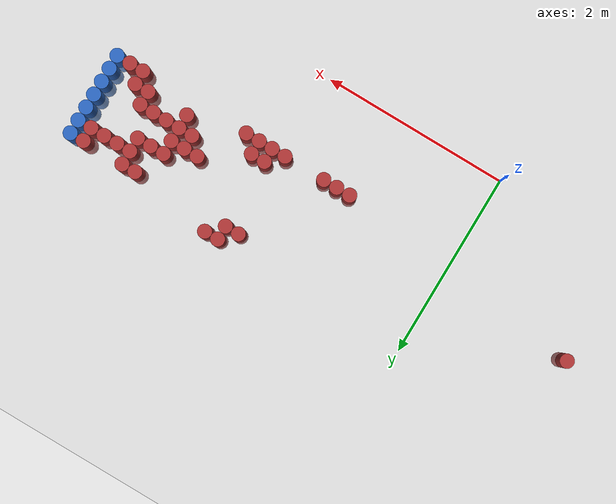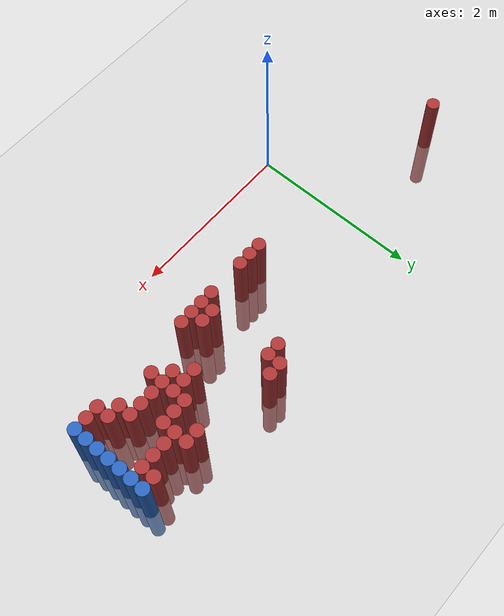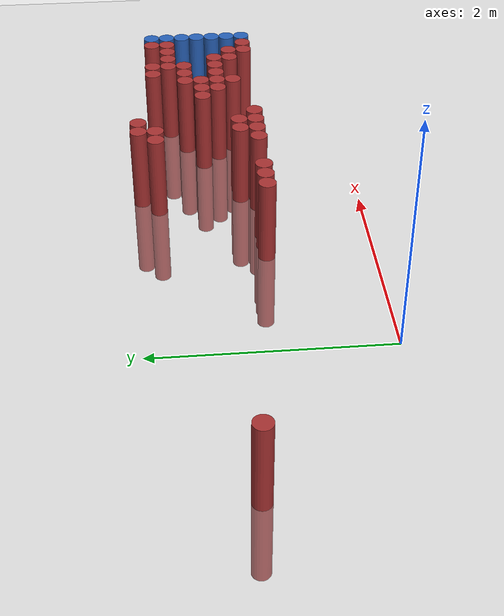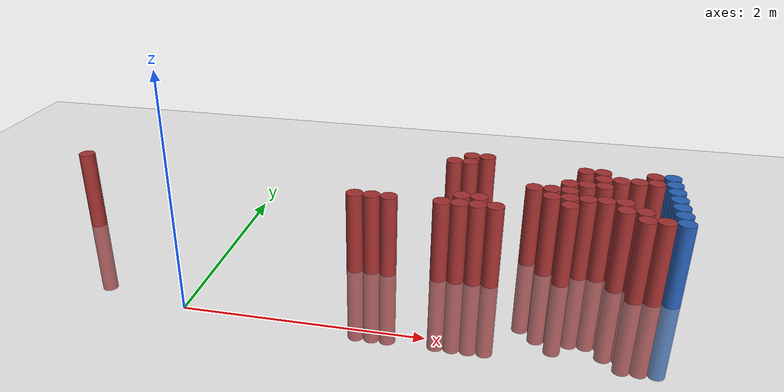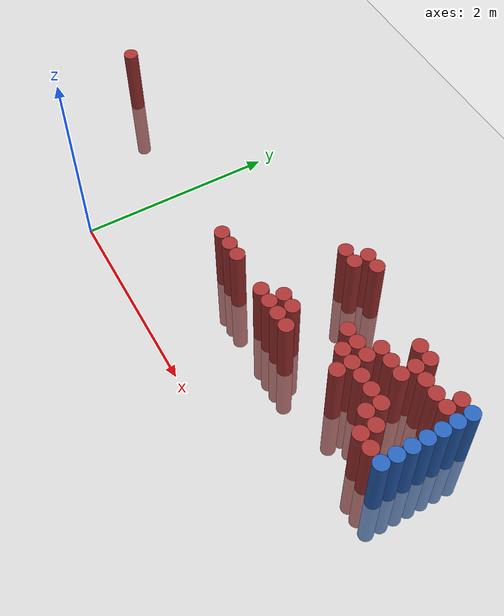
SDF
<sdf version="1.6">
 <world name="default">
  <model name="ground_plane">
   <static>1</static>
   <link name="link">
    <collision name="collision">
     <geometry><plane><normal>0 0 1</normal><size>100 100</size></plane></geometry>
     <surface><friction><ode><mu>100</mu><mu2>50</mu2></ode></friction></surface>
    </collision>
    <visual name="visual">
     <cast_shadows>0</cast_shadows>
     <geometry><plane><normal>0 0 1</normal><size>100 100</size></plane></geometry>
     <material>
      <script><uri>file://media/materials/scripts/gazebo.material</uri><name>Gazebo/Grey</name></script>
     </material>
    </visual>
   </link>
  </model>
  <model name="unit_cylinder_128">
   <static>1</static>
   <pose>3.925000 1.075000 0.000000 0.000000 0.000000 0.000000</pose>
   <link name="link">
    <inertial>
     <mass>1</mass>
     <inertia><ixx>0.145833</ixx><ixy>0</ixy><ixz>0</ixz><iyy>0.145833</iyy><iyz>0</iyz><izz>0.125</izz></inertia>
    </inertial>
    <collision name="collision">
     <geometry><cylinder><radius>0.075000</radius><length>1.5</length></cylinder></geometry>
    </collision>
    <visual name="visual">
     <geometry><cylinder><radius>0.075000</radius><length>1.5</length></cylinder></geometry>
     <material>
      <ambient>0.152000 0.379000 0.720000 1</ambient>
      <diffuse>0.152000 0.379000 0.720000 1</diffuse>
     </material>
     <material>
      <script><name>Gazebo/Grey</name><uri>file://media/materials/scripts/gazebo.material</uri></script>
     </material>
    </visual>
   </link>
  </model>
  <model name="unit_cylinder_130">
   <static>1</static>
   <pose>3.925000 1.225000 0.000000 0.000000 0.000000 0.000000</pose>
   <link name="link">
    <inertial>
     <mass>1</mass>
     <inertia><ixx>0.145833</ixx><ixy>0</ixy><ixz>0</ixz><iyy>0.145833</iyy><iyz>0</iyz><izz>0.125</izz></inertia>
    </inertial>
    <collision name="collision">
     <geometry><cylinder><radius>0.075000</radius><length>1.5</length></cylinder></geometry>
    </collision>
    <visual name="visual">
     <geometry><cylinder><radius>0.075000</radius><length>1.5</length></cylinder></geometry>
     <material>
      <ambient>0.152000 0.379000 0.720000 1</ambient>
      <diffuse>0.152000 0.379000 0.720000 1</diffuse>
     </material>
     <material>
      <script><name>Gazebo/Grey</name><uri>file://media/materials/scripts/gazebo.material</uri></script>
     </material>
    </visual>
   </link>
  </model>
  <model name="unit_cylinder_132">
   <static>1</static>
   <pose>3.925000 1.375000 0.000000 0.000000 0.000000 0.000000</pose>
   <link name="link">
    <inertial>
     <mass>1</mass>
     <inertia><ixx>0.145833</ixx><ixy>0</ixy><ixz>0</ixz><iyy>0.145833</iyy><iyz>0</iyz><izz>0.125</izz></inertia>
    </inertial>
    <collision name="collision">
     <geometry><cylinder><radius>0.075000</radius><length>1.5</length></cylinder></geometry>
    </collision>
    <visual name="visual">
     <geometry><cylinder><radius>0.075000</radius><length>1.5</length></cylinder></geometry>
     <material>
      <ambient>0.152000 0.379000 0.720000 1</ambient>
      <diffuse>0.152000 0.379000 0.720000 1</diffuse>
     </material>
     <material>
      <script><name>Gazebo/Grey</name><uri>file://media/materials/scripts/gazebo.material</uri></script>
     </material>
    </visual>
   </link>
  </model>
  <model name="unit_cylinder_134">
   <static>1</static>
   <pose>3.925000 1.525000 0.000000 0.000000 0.000000 0.000000</pose>
   <link name="link">
    <inertial>
     <mass>1</mass>
     <inertia><ixx>0.145833</ixx><ixy>0</ixy><ixz>0</ixz><iyy>0.145833</iyy><iyz>0</iyz><izz>0.125</izz></inertia>
    </inertial>
    <collision name="collision">
     <geometry><cylinder><radius>0.075000</radius><length>1.5</length></cylinder></geometry>
    </collision>
    <visual name="visual">
     <geometry><cylinder><radius>0.075000</radius><length>1.5</length></cylinder></geometry>
     <material>
      <ambient>0.152000 0.379000 0.720000 1</ambient>
      <diffuse>0.152000 0.379000 0.720000 1</diffuse>
     </material>
     <material>
      <script><name>Gazebo/Grey</name><uri>file://media/materials/scripts/gazebo.material</uri></script>
     </material>
    </visual>
   </link>
  </model>
  <model name="unit_cylinder_136">
   <static>1</static>
   <pose>3.925000 1.675000 0.000000 0.000000 0.000000 0.000000</pose>
   <link name="link">
    <inertial>
     <mass>1</mass>
     <inertia><ixx>0.145833</ixx><ixy>0</ixy><ixz>0</ixz><iyy>0.145833</iyy><iyz>0</iyz><izz>0.125</izz></inertia>
    </inertial>
    <collision name="collision">
     <geometry><cylinder><radius>0.075000</radius><length>1.5</length></cylinder></geometry>
    </collision>
    <visual name="visual">
     <geometry><cylinder><radius>0.075000</radius><length>1.5</length></cylinder></geometry>
     <material>
      <ambient>0.152000 0.379000 0.720000 1</ambient>
      <diffuse>0.152000 0.379000 0.720000 1</diffuse>
     </material>
     <material>
      <script><name>Gazebo/Grey</name><uri>file://media/materials/scripts/gazebo.material</uri></script>
     </material>
    </visual>
   </link>
  </model>
  <model name="unit_cylinder_138">
   <static>1</static>
   <pose>3.925000 1.825000 0.000000 0.000000 0.000000 0.000000</pose>
   <link name="link">
    <inertial>
     <mass>1</mass>
     <inertia><ixx>0.145833</ixx><ixy>0</ixy><ixz>0</ixz><iyy>0.145833</iyy><iyz>0</iyz><izz>0.125</izz></inertia>
    </inertial>
    <collision name="collision">
     <geometry><cylinder><radius>0.075000</radius><length>1.5</length></cylinder></geometry>
    </collision>
    <visual name="visual">
     <geometry><cylinder><radius>0.075000</radius><length>1.5</length></cylinder></geometry>
     <material>
      <ambient>0.152000 0.379000 0.720000 1</ambient>
      <diffuse>0.152000 0.379000 0.720000 1</diffuse>
     </material>
     <material>
      <script><name>Gazebo/Grey</name><uri>file://media/materials/scripts/gazebo.material</uri></script>
     </material>
    </visual>
   </link>
  </model>
  <model name="unit_cylinder_314">
   <static>1</static>
   <pose>-1.475000 1.225000 0.000000 0.000000 0.000000 0.000000</pose>
   <link name="link">
    <inertial>
     <mass>1</mass>
     <inertia><ixx>0.145833</ixx><ixy>0</ixy><ixz>0</ixz><iyy>0.145833</iyy><iyz>0</iyz><izz>0.125</izz></inertia>
    </inertial>
    <collision name="collision">
     <geometry><cylinder><radius>0.075000</radius><length>1.5</length></cylinder></geometry>
    </collision>
    <visual name="visual">
     <geometry><cylinder><radius>0.075000</radius><length>1.5</length></cylinder></geometry>
     <material>
      <ambient>0.648000 0.192000 0.192000 1</ambient>
      <diffuse>0.648000 0.192000 0.192000 1</diffuse>
     </material>
     <material>
      <script><name>Gazebo/Grey</name><uri>file://media/materials/scripts/gazebo.material</uri></script>
     </material>
    </visual>
   </link>
  </model>
  <model name="unit_cylinder_352">
   <static>1</static>
   <pose>1.225000 0.925000 0.000000 0.000000 0.000000 0.000000</pose>
   <link name="link">
    <inertial>
     <mass>1</mass>
     <inertia><ixx>0.145833</ixx><ixy>0</ixy><ixz>0</ixz><iyy>0.145833</iyy><iyz>0</iyz><izz>0.125</izz></inertia>
    </inertial>
    <collision name="collision">
     <geometry><cylinder><radius>0.075000</radius><length>1.5</length></cylinder></geometry>
    </collision>
    <visual name="visual">
     <geometry><cylinder><radius>0.075000</radius><length>1.5</length></cylinder></geometry>
     <material>
      <ambient>0.648000 0.192000 0.192000 1</ambient>
      <diffuse>0.648000 0.192000 0.192000 1</diffuse>
     </material>
     <material>
      <script><name>Gazebo/Grey</name><uri>file://media/materials/scripts/gazebo.material</uri></script>
     </material>
    </visual>
   </link>
  </model>
  <model name="unit_cylinder_358">
   <static>1</static>
   <pose>1.375000 0.925000 0.000000 0.000000 0.000000 0.000000</pose>
   <link name="link">
    <inertial>
     <mass>1</mass>
     <inertia><ixx>0.145833</ixx><ixy>0</ixy><ixz>0</ixz><iyy>0.145833</iyy><iyz>0</iyz><izz>0.125</izz></inertia>
    </inertial>
    <collision name="collision">
     <geometry><cylinder><radius>0.075000</radius><length>1.5</length></cylinder></geometry>
    </collision>
    <visual name="visual">
     <geometry><cylinder><radius>0.075000</radius><length>1.5</length></cylinder></geometry>
     <material>
      <ambient>0.648000 0.192000 0.192000 1</ambient>
      <diffuse>0.648000 0.192000 0.192000 1</diffuse>
     </material>
     <material>
      <script><name>Gazebo/Grey</name><uri>file://media/materials/scripts/gazebo.material</uri></script>
     </material>
    </visual>
   </link>
  </model>
  <model name="unit_cylinder_365">
   <static>1</static>
   <pose>1.525000 0.925000 0.000000 0.000000 0.000000 0.000000</pose>
   <link name="link">
    <inertial>
     <mass>1</mass>
     <inertia><ixx>0.145833</ixx><ixy>0</ixy><ixz>0</ixz><iyy>0.145833</iyy><iyz>0</iyz><izz>0.125</izz></inertia>
    </inertial>
    <collision name="collision">
     <geometry><cylinder><radius>0.075000</radius><length>1.5</length></cylinder></geometry>
    </collision>
    <visual name="visual">
     <geometry><cylinder><radius>0.075000</radius><length>1.5</length></cylinder></geometry>
     <material>
      <ambient>0.648000 0.192000 0.192000 1</ambient>
      <diffuse>0.648000 0.192000 0.192000 1</diffuse>
     </material>
     <material>
      <script><name>Gazebo/Grey</name><uri>file://media/materials/scripts/gazebo.material</uri></script>
     </material>
    </visual>
   </link>
  </model>
  <model name="unit_cylinder_385">
   <static>1</static>
   <pose>1.975000 0.925000 0.000000 0.000000 0.000000 0.000000</pose>
   <link name="link">
    <inertial>
     <mass>1</mass>
     <inertia><ixx>0.145833</ixx><ixy>0</ixy><ixz>0</ixz><iyy>0.145833</iyy><iyz>0</iyz><izz>0.125</izz></inertia>
    </inertial>
    <collision name="collision">
     <geometry><cylinder><radius>0.075000</radius><length>1.5</length></cylinder></geometry>
    </collision>
    <visual name="visual">
     <geometry><cylinder><radius>0.075000</radius><length>1.5</length></cylinder></geometry>
     <material>
      <ambient>0.648000 0.192000 0.192000 1</ambient>
      <diffuse>0.648000 0.192000 0.192000 1</diffuse>
     </material>
     <material>
      <script><name>Gazebo/Grey</name><uri>file://media/materials/scripts/gazebo.material</uri></script>
     </material>
    </visual>
   </link>
  </model>
  <model name="unit_cylinder_386">
   <static>1</static>
   <pose>1.975000 1.825000 0.000000 0.000000 0.000000 0.000000</pose>
   <link name="link">
    <inertial>
     <mass>1</mass>
     <inertia><ixx>0.145833</ixx><ixy>0</ixy><ixz>0</ixz><iyy>0.145833</iyy><iyz>0</iyz><izz>0.125</izz></inertia>
    </inertial>
    <collision name="collision">
     <geometry><cylinder><radius>0.075000</radius><length>1.5</length></cylinder></geometry>
    </collision>
    <visual name="visual">
     <geometry><cylinder><radius>0.075000</radius><length>1.5</length></cylinder></geometry>
     <material>
      <ambient>0.648000 0.192000 0.192000 1</ambient>
      <diffuse>0.648000 0.192000 0.192000 1</diffuse>
     </material>
     <material>
      <script><name>Gazebo/Grey</name><uri>file://media/materials/scripts/gazebo.material</uri></script>
     </material>
    </visual>
   </link>
  </model>
  <model name="unit_cylinder_393">
   <static>1</static>
   <pose>2.125000 0.925000 0.000000 0.000000 0.000000 0.000000</pose>
   <link name="link">
    <inertial>
     <mass>1</mass>
     <inertia><ixx>0.145833</ixx><ixy>0</ixy><ixz>0</ixz><iyy>0.145833</iyy><iyz>0</iyz><izz>0.125</izz></inertia>
    </inertial>
    <collision name="collision">
     <geometry><cylinder><radius>0.075000</radius><length>1.5</length></cylinder></geometry>
    </collision>
    <visual name="visual">
     <geometry><cylinder><radius>0.075000</radius><length>1.5</length></cylinder></geometry>
     <material>
      <ambient>0.648000 0.192000 0.192000 1</ambient>
      <diffuse>0.648000 0.192000 0.192000 1</diffuse>
     </material>
     <material>
      <script><name>Gazebo/Grey</name><uri>file://media/materials/scripts/gazebo.material</uri></script>
     </material>
    </visual>
   </link>
  </model>
  <model name="unit_cylinder_394">
   <static>1</static>
   <pose>2.125000 1.075000 0.000000 0.000000 0.000000 0.000000</pose>
   <link name="link">
    <inertial>
     <mass>1</mass>
     <inertia><ixx>0.145833</ixx><ixy>0</ixy><ixz>0</ixz><iyy>0.145833</iyy><iyz>0</iyz><izz>0.125</izz></inertia>
    </inertial>
    <collision name="collision">
     <geometry><cylinder><radius>0.075000</radius><length>1.5</length></cylinder></geometry>
    </collision>
    <visual name="visual">
     <geometry><cylinder><radius>0.075000</radius><length>1.5</length></cylinder></geometry>
     <material>
      <ambient>0.648000 0.192000 0.192000 1</ambient>
      <diffuse>0.648000 0.192000 0.192000 1</diffuse>
     </material>
     <material>
      <script><name>Gazebo/Grey</name><uri>file://media/materials/scripts/gazebo.material</uri></script>
     </material>
    </visual>
   </link>
  </model>
  <model name="unit_cylinder_395">
   <static>1</static>
   <pose>2.125000 1.825000 0.000000 0.000000 0.000000 0.000000</pose>
   <link name="link">
    <inertial>
     <mass>1</mass>
     <inertia><ixx>0.145833</ixx><ixy>0</ixy><ixz>0</ixz><iyy>0.145833</iyy><iyz>0</iyz><izz>0.125</izz></inertia>
    </inertial>
    <collision name="collision">
     <geometry><cylinder><radius>0.075000</radius><length>1.5</length></cylinder></geometry>
    </collision>
    <visual name="visual">
     <geometry><cylinder><radius>0.075000</radius><length>1.5</length></cylinder></geometry>
     <material>
      <ambient>0.648000 0.192000 0.192000 1</ambient>
      <diffuse>0.648000 0.192000 0.192000 1</diffuse>
     </material>
     <material>
      <script><name>Gazebo/Grey</name><uri>file://media/materials/scripts/gazebo.material</uri></script>
     </material>
    </visual>
   </link>
  </model>
  <model name="unit_cylinder_396">
   <static>1</static>
   <pose>2.125000 1.975000 0.000000 0.000000 0.000000 0.000000</pose>
   <link name="link">
    <inertial>
     <mass>1</mass>
     <inertia><ixx>0.145833</ixx><ixy>0</ixy><ixz>0</ixz><iyy>0.145833</iyy><iyz>0</iyz><izz>0.125</izz></inertia>
    </inertial>
    <collision name="collision">
     <geometry><cylinder><radius>0.075000</radius><length>1.5</length></cylinder></geometry>
    </collision>
    <visual name="visual">
     <geometry><cylinder><radius>0.075000</radius><length>1.5</length></cylinder></geometry>
     <material>
      <ambient>0.648000 0.192000 0.192000 1</ambient>
      <diffuse>0.648000 0.192000 0.192000 1</diffuse>
     </material>
     <material>
      <script><name>Gazebo/Grey</name><uri>file://media/materials/scripts/gazebo.material</uri></script>
     </material>
    </visual>
   </link>
  </model>
  <model name="unit_cylinder_402">
   <static>1</static>
   <pose>2.275000 0.925000 0.000000 0.000000 0.000000 0.000000</pose>
   <link name="link">
    <inertial>
     <mass>1</mass>
     <inertia><ixx>0.145833</ixx><ixy>0</ixy><ixz>0</ixz><iyy>0.145833</iyy><iyz>0</iyz><izz>0.125</izz></inertia>
    </inertial>
    <collision name="collision">
     <geometry><cylinder><radius>0.075000</radius><length>1.5</length></cylinder></geometry>
    </collision>
    <visual name="visual">
     <geometry><cylinder><radius>0.075000</radius><length>1.5</length></cylinder></geometry>
     <material>
      <ambient>0.648000 0.192000 0.192000 1</ambient>
      <diffuse>0.648000 0.192000 0.192000 1</diffuse>
     </material>
     <material>
      <script><name>Gazebo/Grey</name><uri>file://media/materials/scripts/gazebo.material</uri></script>
     </material>
    </visual>
   </link>
  </model>
  <model name="unit_cylinder_403">
   <static>1</static>
   <pose>2.275000 1.075000 0.000000 0.000000 0.000000 0.000000</pose>
   <link name="link">
    <inertial>
     <mass>1</mass>
     <inertia><ixx>0.145833</ixx><ixy>0</ixy><ixz>0</ixz><iyy>0.145833</iyy><iyz>0</iyz><izz>0.125</izz></inertia>
    </inertial>
    <collision name="collision">
     <geometry><cylinder><radius>0.075000</radius><length>1.5</length></cylinder></geometry>
    </collision>
    <visual name="visual">
     <geometry><cylinder><radius>0.075000</radius><length>1.5</length></cylinder></geometry>
     <material>
      <ambient>0.648000 0.192000 0.192000 1</ambient>
      <diffuse>0.648000 0.192000 0.192000 1</diffuse>
     </material>
     <material>
      <script><name>Gazebo/Grey</name><uri>file://media/materials/scripts/gazebo.material</uri></script>
     </material>
    </visual>
   </link>
  </model>
  <model name="unit_cylinder_404">
   <static>1</static>
   <pose>2.275000 1.975000 0.000000 0.000000 0.000000 0.000000</pose>
   <link name="link">
    <inertial>
     <mass>1</mass>
     <inertia><ixx>0.145833</ixx><ixy>0</ixy><ixz>0</ixz><iyy>0.145833</iyy><iyz>0</iyz><izz>0.125</izz></inertia>
    </inertial>
    <collision name="collision">
     <geometry><cylinder><radius>0.075000</radius><length>1.5</length></cylinder></geometry>
    </collision>
    <visual name="visual">
     <geometry><cylinder><radius>0.075000</radius><length>1.5</length></cylinder></geometry>
     <material>
      <ambient>0.648000 0.192000 0.192000 1</ambient>
      <diffuse>0.648000 0.192000 0.192000 1</diffuse>
     </material>
     <material>
      <script><name>Gazebo/Grey</name><uri>file://media/materials/scripts/gazebo.material</uri></script>
     </material>
    </visual>
   </link>
  </model>
  <model name="unit_cylinder_406">
   <static>1</static>
   <pose>2.425000 0.925000 0.000000 0.000000 0.000000 0.000000</pose>
   <link name="link">
    <inertial>
     <mass>1</mass>
     <inertia><ixx>0.145833</ixx><ixy>0</ixy><ixz>0</ixz><iyy>0.145833</iyy><iyz>0</iyz><izz>0.125</izz></inertia>
    </inertial>
    <collision name="collision">
     <geometry><cylinder><radius>0.075000</radius><length>1.5</length></cylinder></geometry>
    </collision>
    <visual name="visual">
     <geometry><cylinder><radius>0.075000</radius><length>1.5</length></cylinder></geometry>
     <material>
      <ambient>0.648000 0.192000 0.192000 1</ambient>
      <diffuse>0.648000 0.192000 0.192000 1</diffuse>
     </material>
     <material>
      <script><name>Gazebo/Grey</name><uri>file://media/materials/scripts/gazebo.material</uri></script>
     </material>
    </visual>
   </link>
  </model>
  <model name="unit_cylinder_408">
   <static>1</static>
   <pose>2.725000 1.375000 0.000000 0.000000 0.000000 0.000000</pose>
   <link name="link">
    <inertial>
     <mass>1</mass>
     <inertia><ixx>0.145833</ixx><ixy>0</ixy><ixz>0</ixz><iyy>0.145833</iyy><iyz>0</iyz><izz>0.125</izz></inertia>
    </inertial>
    <collision name="collision">
     <geometry><cylinder><radius>0.075000</radius><length>1.5</length></cylinder></geometry>
    </collision>
    <visual name="visual">
     <geometry><cylinder><radius>0.075000</radius><length>1.5</length></cylinder></geometry>
     <material>
      <ambient>0.648000 0.192000 0.192000 1</ambient>
      <diffuse>0.648000 0.192000 0.192000 1</diffuse>
     </material>
     <material>
      <script><name>Gazebo/Grey</name><uri>file://media/materials/scripts/gazebo.material</uri></script>
     </material>
    </visual>
   </link>
  </model>
  <model name="unit_cylinder_409">
   <static>1</static>
   <pose>2.875000 1.225000 0.000000 0.000000 0.000000 0.000000</pose>
   <link name="link">
    <inertial>
     <mass>1</mass>
     <inertia><ixx>0.145833</ixx><ixy>0</ixy><ixz>0</ixz><iyy>0.145833</iyy><iyz>0</iyz><izz>0.125</izz></inertia>
    </inertial>
    <collision name="collision">
     <geometry><cylinder><radius>0.075000</radius><length>1.5</length></cylinder></geometry>
    </collision>
    <visual name="visual">
     <geometry><cylinder><radius>0.075000</radius><length>1.5</length></cylinder></geometry>
     <material>
      <ambient>0.648000 0.192000 0.192000 1</ambient>
      <diffuse>0.648000 0.192000 0.192000 1</diffuse>
     </material>
     <material>
      <script><name>Gazebo/Grey</name><uri>file://media/materials/scripts/gazebo.material</uri></script>
     </material>
    </visual>
   </link>
  </model>
  <model name="unit_cylinder_410">
   <static>1</static>
   <pose>2.875000 1.375000 0.000000 0.000000 0.000000 0.000000</pose>
   <link name="link">
    <inertial>
     <mass>1</mass>
     <inertia><ixx>0.145833</ixx><ixy>0</ixy><ixz>0</ixz><iyy>0.145833</iyy><iyz>0</iyz><izz>0.125</izz></inertia>
    </inertial>
    <collision name="collision">
     <geometry><cylinder><radius>0.075000</radius><length>1.5</length></cylinder></geometry>
    </collision>
    <visual name="visual">
     <geometry><cylinder><radius>0.075000</radius><length>1.5</length></cylinder></geometry>
     <material>
      <ambient>0.648000 0.192000 0.192000 1</ambient>
      <diffuse>0.648000 0.192000 0.192000 1</diffuse>
     </material>
     <material>
      <script><name>Gazebo/Grey</name><uri>file://media/materials/scripts/gazebo.material</uri></script>
     </material>
    </visual>
   </link>
  </model>
  <model name="unit_cylinder_414">
   <static>1</static>
   <pose>3.025000 1.075000 0.000000 0.000000 0.000000 0.000000</pose>
   <link name="link">
    <inertial>
     <mass>1</mass>
     <inertia><ixx>0.145833</ixx><ixy>0</ixy><ixz>0</ixz><iyy>0.145833</iyy><iyz>0</iyz><izz>0.125</izz></inertia>
    </inertial>
    <collision name="collision">
     <geometry><cylinder><radius>0.075000</radius><length>1.5</length></cylinder></geometry>
    </collision>
    <visual name="visual">
     <geometry><cylinder><radius>0.075000</radius><length>1.5</length></cylinder></geometry>
     <material>
      <ambient>0.648000 0.192000 0.192000 1</ambient>
      <diffuse>0.648000 0.192000 0.192000 1</diffuse>
     </material>
     <material>
      <script><name>Gazebo/Grey</name><uri>file://media/materials/scripts/gazebo.material</uri></script>
     </material>
    </visual>
   </link>
  </model>
  <model name="unit_cylinder_415">
   <static>1</static>
   <pose>3.025000 1.225000 0.000000 0.000000 0.000000 0.000000</pose>
   <link name="link">
    <inertial>
     <mass>1</mass>
     <inertia><ixx>0.145833</ixx><ixy>0</ixy><ixz>0</ixz><iyy>0.145833</iyy><iyz>0</iyz><izz>0.125</izz></inertia>
    </inertial>
    <collision name="collision">
     <geometry><cylinder><radius>0.075000</radius><length>1.5</length></cylinder></geometry>
    </collision>
    <visual name="visual">
     <geometry><cylinder><radius>0.075000</radius><length>1.5</length></cylinder></geometry>
     <material>
      <ambient>0.648000 0.192000 0.192000 1</ambient>
      <diffuse>0.648000 0.192000 0.192000 1</diffuse>
     </material>
     <material>
      <script><name>Gazebo/Grey</name><uri>file://media/materials/scripts/gazebo.material</uri></script>
     </material>
    </visual>
   </link>
  </model>
  <model name="unit_cylinder_416">
   <static>1</static>
   <pose>3.025000 1.375000 0.000000 0.000000 0.000000 0.000000</pose>
   <link name="link">
    <inertial>
     <mass>1</mass>
     <inertia><ixx>0.145833</ixx><ixy>0</ixy><ixz>0</ixz><iyy>0.145833</iyy><iyz>0</iyz><izz>0.125</izz></inertia>
    </inertial>
    <collision name="collision">
     <geometry><cylinder><radius>0.075000</radius><length>1.5</length></cylinder></geometry>
    </collision>
    <visual name="visual">
     <geometry><cylinder><radius>0.075000</radius><length>1.5</length></cylinder></geometry>
     <material>
      <ambient>0.648000 0.192000 0.192000 1</ambient>
      <diffuse>0.648000 0.192000 0.192000 1</diffuse>
     </material>
     <material>
      <script><name>Gazebo/Grey</name><uri>file://media/materials/scripts/gazebo.material</uri></script>
     </material>
    </visual>
   </link>
  </model>
  <model name="unit_cylinder_417">
   <static>1</static>
   <pose>3.025000 1.525000 0.000000 0.000000 0.000000 0.000000</pose>
   <link name="link">
    <inertial>
     <mass>1</mass>
     <inertia><ixx>0.145833</ixx><ixy>0</ixy><ixz>0</ixz><iyy>0.145833</iyy><iyz>0</iyz><izz>0.125</izz></inertia>
    </inertial>
    <collision name="collision">
     <geometry><cylinder><radius>0.075000</radius><length>1.5</length></cylinder></geometry>
    </collision>
    <visual name="visual">
     <geometry><cylinder><radius>0.075000</radius><length>1.5</length></cylinder></geometry>
     <material>
      <ambient>0.648000 0.192000 0.192000 1</ambient>
      <diffuse>0.648000 0.192000 0.192000 1</diffuse>
     </material>
     <material>
      <script><name>Gazebo/Grey</name><uri>file://media/materials/scripts/gazebo.material</uri></script>
     </material>
    </visual>
   </link>
  </model>
  <model name="unit_cylinder_419">
   <static>1</static>
   <pose>3.175000 1.225000 0.000000 0.000000 0.000000 0.000000</pose>
   <link name="link">
    <inertial>
     <mass>1</mass>
     <inertia><ixx>0.145833</ixx><ixy>0</ixy><ixz>0</ixz><iyy>0.145833</iyy><iyz>0</iyz><izz>0.125</izz></inertia>
    </inertial>
    <collision name="collision">
     <geometry><cylinder><radius>0.075000</radius><length>1.5</length></cylinder></geometry>
    </collision>
    <visual name="visual">
     <geometry><cylinder><radius>0.075000</radius><length>1.5</length></cylinder></geometry>
     <material>
      <ambient>0.648000 0.192000 0.192000 1</ambient>
      <diffuse>0.648000 0.192000 0.192000 1</diffuse>
     </material>
     <material>
      <script><name>Gazebo/Grey</name><uri>file://media/materials/scripts/gazebo.material</uri></script>
     </material>
    </visual>
   </link>
  </model>
  <model name="unit_cylinder_420">
   <static>1</static>
   <pose>3.175000 1.525000 0.000000 0.000000 0.000000 0.000000</pose>
   <link name="link">
    <inertial>
     <mass>1</mass>
     <inertia><ixx>0.145833</ixx><ixy>0</ixy><ixz>0</ixz><iyy>0.145833</iyy><iyz>0</iyz><izz>0.125</izz></inertia>
    </inertial>
    <collision name="collision">
     <geometry><cylinder><radius>0.075000</radius><length>1.5</length></cylinder></geometry>
    </collision>
    <visual name="visual">
     <geometry><cylinder><radius>0.075000</radius><length>1.5</length></cylinder></geometry>
     <material>
      <ambient>0.648000 0.192000 0.192000 1</ambient>
      <diffuse>0.648000 0.192000 0.192000 1</diffuse>
     </material>
     <material>
      <script><name>Gazebo/Grey</name><uri>file://media/materials/scripts/gazebo.material</uri></script>
     </material>
    </visual>
   </link>
  </model>
  <model name="unit_cylinder_421">
   <static>1</static>
   <pose>3.175000 1.825000 0.000000 0.000000 0.000000 0.000000</pose>
   <link name="link">
    <inertial>
     <mass>1</mass>
     <inertia><ixx>0.145833</ixx><ixy>0</ixy><ixz>0</ixz><iyy>0.145833</iyy><iyz>0</iyz><izz>0.125</izz></inertia>
    </inertial>
    <collision name="collision">
     <geometry><cylinder><radius>0.075000</radius><length>1.5</length></cylinder></geometry>
    </collision>
    <visual name="visual">
     <geometry><cylinder><radius>0.075000</radius><length>1.5</length></cylinder></geometry>
     <material>
      <ambient>0.648000 0.192000 0.192000 1</ambient>
      <diffuse>0.648000 0.192000 0.192000 1</diffuse>
     </material>
     <material>
      <script><name>Gazebo/Grey</name><uri>file://media/materials/scripts/gazebo.material</uri></script>
     </material>
    </visual>
   </link>
  </model>
  <model name="unit_cylinder_423">
   <static>1</static>
   <pose>3.325000 1.225000 0.000000 0.000000 0.000000 0.000000</pose>
   <link name="link">
    <inertial>
     <mass>1</mass>
     <inertia><ixx>0.145833</ixx><ixy>0</ixy><ixz>0</ixz><iyy>0.145833</iyy><iyz>0</iyz><izz>0.125</izz></inertia>
    </inertial>
    <collision name="collision">
     <geometry><cylinder><radius>0.075000</radius><length>1.5</length></cylinder></geometry>
    </collision>
    <visual name="visual">
     <geometry><cylinder><radius>0.075000</radius><length>1.5</length></cylinder></geometry>
     <material>
      <ambient>0.648000 0.192000 0.192000 1</ambient>
      <diffuse>0.648000 0.192000 0.192000 1</diffuse>
     </material>
     <material>
      <script><name>Gazebo/Grey</name><uri>file://media/materials/scripts/gazebo.material</uri></script>
     </material>
    </visual>
   </link>
  </model>
  <model name="unit_cylinder_424">
   <static>1</static>
   <pose>3.325000 1.525000 0.000000 0.000000 0.000000 0.000000</pose>
   <link name="link">
    <inertial>
     <mass>1</mass>
     <inertia><ixx>0.145833</ixx><ixy>0</ixy><ixz>0</ixz><iyy>0.145833</iyy><iyz>0</iyz><izz>0.125</izz></inertia>
    </inertial>
    <collision name="collision">
     <geometry><cylinder><radius>0.075000</radius><length>1.5</length></cylinder></geometry>
    </collision>
    <visual name="visual">
     <geometry><cylinder><radius>0.075000</radius><length>1.5</length></cylinder></geometry>
     <material>
      <ambient>0.648000 0.192000 0.192000 1</ambient>
      <diffuse>0.648000 0.192000 0.192000 1</diffuse>
     </material>
     <material>
      <script><name>Gazebo/Grey</name><uri>file://media/materials/scripts/gazebo.material</uri></script>
     </material>
    </visual>
   </link>
  </model>
  <model name="unit_cylinder_425">
   <static>1</static>
   <pose>3.325000 1.675000 0.000000 0.000000 0.000000 0.000000</pose>
   <link name="link">
    <inertial>
     <mass>1</mass>
     <inertia><ixx>0.145833</ixx><ixy>0</ixy><ixz>0</ixz><iyy>0.145833</iyy><iyz>0</iyz><izz>0.125</izz></inertia>
    </inertial>
    <collision name="collision">
     <geometry><cylinder><radius>0.075000</radius><length>1.5</length></cylinder></geometry>
    </collision>
    <visual name="visual">
     <geometry><cylinder><radius>0.075000</radius><length>1.5</length></cylinder></geometry>
     <material>
      <ambient>0.648000 0.192000 0.192000 1</ambient>
      <diffuse>0.648000 0.192000 0.192000 1</diffuse>
     </material>
     <material>
      <script><name>Gazebo/Grey</name><uri>file://media/materials/scripts/gazebo.material</uri></script>
     </material>
    </visual>
   </link>
  </model>
  <model name="unit_cylinder_426">
   <static>1</static>
   <pose>3.325000 1.825000 0.000000 0.000000 0.000000 0.000000</pose>
   <link name="link">
    <inertial>
     <mass>1</mass>
     <inertia><ixx>0.145833</ixx><ixy>0</ixy><ixz>0</ixz><iyy>0.145833</iyy><iyz>0</iyz><izz>0.125</izz></inertia>
    </inertial>
    <collision name="collision">
     <geometry><cylinder><radius>0.075000</radius><length>1.5</length></cylinder></geometry>
    </collision>
    <visual name="visual">
     <geometry><cylinder><radius>0.075000</radius><length>1.5</length></cylinder></geometry>
     <material>
      <ambient>0.648000 0.192000 0.192000 1</ambient>
      <diffuse>0.648000 0.192000 0.192000 1</diffuse>
     </material>
     <material>
      <script><name>Gazebo/Grey</name><uri>file://media/materials/scripts/gazebo.material</uri></script>
     </material>
    </visual>
   </link>
  </model>
  <model name="unit_cylinder_428">
   <static>1</static>
   <pose>3.475000 1.075000 0.000000 0.000000 0.000000 0.000000</pose>
   <link name="link">
    <inertial>
     <mass>1</mass>
     <inertia><ixx>0.145833</ixx><ixy>0</ixy><ixz>0</ixz><iyy>0.145833</iyy><iyz>0</iyz><izz>0.125</izz></inertia>
    </inertial>
    <collision name="collision">
     <geometry><cylinder><radius>0.075000</radius><length>1.5</length></cylinder></geometry>
    </collision>
    <visual name="visual">
     <geometry><cylinder><radius>0.075000</radius><length>1.5</length></cylinder></geometry>
     <material>
      <ambient>0.648000 0.192000 0.192000 1</ambient>
      <diffuse>0.648000 0.192000 0.192000 1</diffuse>
     </material>
     <material>
      <script><name>Gazebo/Grey</name><uri>file://media/materials/scripts/gazebo.material</uri></script>
     </material>
    </visual>
   </link>
  </model>
  <model name="unit_cylinder_429">
   <static>1</static>
   <pose>3.475000 1.225000 0.000000 0.000000 0.000000 0.000000</pose>
   <link name="link">
    <inertial>
     <mass>1</mass>
     <inertia><ixx>0.145833</ixx><ixy>0</ixy><ixz>0</ixz><iyy>0.145833</iyy><iyz>0</iyz><izz>0.125</izz></inertia>
    </inertial>
    <collision name="collision">
     <geometry><cylinder><radius>0.075000</radius><length>1.5</length></cylinder></geometry>
    </collision>
    <visual name="visual">
     <geometry><cylinder><radius>0.075000</radius><length>1.5</length></cylinder></geometry>
     <material>
      <ambient>0.648000 0.192000 0.192000 1</ambient>
      <diffuse>0.648000 0.192000 0.192000 1</diffuse>
     </material>
     <material>
      <script><name>Gazebo/Grey</name><uri>file://media/materials/scripts/gazebo.material</uri></script>
     </material>
    </visual>
   </link>
  </model>
  <model name="unit_cylinder_430">
   <static>1</static>
   <pose>3.475000 1.675000 0.000000 0.000000 0.000000 0.000000</pose>
   <link name="link">
    <inertial>
     <mass>1</mass>
     <inertia><ixx>0.145833</ixx><ixy>0</ixy><ixz>0</ixz><iyy>0.145833</iyy><iyz>0</iyz><izz>0.125</izz></inertia>
    </inertial>
    <collision name="collision">
     <geometry><cylinder><radius>0.075000</radius><length>1.5</length></cylinder></geometry>
    </collision>
    <visual name="visual">
     <geometry><cylinder><radius>0.075000</radius><length>1.5</length></cylinder></geometry>
     <material>
      <ambient>0.648000 0.192000 0.192000 1</ambient>
      <diffuse>0.648000 0.192000 0.192000 1</diffuse>
     </material>
     <material>
      <script><name>Gazebo/Grey</name><uri>file://media/materials/scripts/gazebo.material</uri></script>
     </material>
    </visual>
   </link>
  </model>
  <model name="unit_cylinder_431">
   <static>1</static>
   <pose>3.625000 0.925000 0.000000 0.000000 0.000000 0.000000</pose>
   <link name="link">
    <inertial>
     <mass>1</mass>
     <inertia><ixx>0.145833</ixx><ixy>0</ixy><ixz>0</ixz><iyy>0.145833</iyy><iyz>0</iyz><izz>0.125</izz></inertia>
    </inertial>
    <collision name="collision">
     <geometry><cylinder><radius>0.075000</radius><length>1.5</length></cylinder></geometry>
    </collision>
    <visual name="visual">
     <geometry><cylinder><radius>0.075000</radius><length>1.5</length></cylinder></geometry>
     <material>
      <ambient>0.648000 0.192000 0.192000 1</ambient>
      <diffuse>0.648000 0.192000 0.192000 1</diffuse>
     </material>
     <material>
      <script><name>Gazebo/Grey</name><uri>file://media/materials/scripts/gazebo.material</uri></script>
     </material>
    </visual>
   </link>
  </model>
  <model name="unit_cylinder_432">
   <static>1</static>
   <pose>3.625000 1.075000 0.000000 0.000000 0.000000 0.000000</pose>
   <link name="link">
    <inertial>
     <mass>1</mass>
     <inertia><ixx>0.145833</ixx><ixy>0</ixy><ixz>0</ixz><iyy>0.145833</iyy><iyz>0</iyz><izz>0.125</izz></inertia>
    </inertial>
    <collision name="collision">
     <geometry><cylinder><radius>0.075000</radius><length>1.5</length></cylinder></geometry>
    </collision>
    <visual name="visual">
     <geometry><cylinder><radius>0.075000</radius><length>1.5</length></cylinder></geometry>
     <material>
      <ambient>0.648000 0.192000 0.192000 1</ambient>
      <diffuse>0.648000 0.192000 0.192000 1</diffuse>
     </material>
     <material>
      <script><name>Gazebo/Grey</name><uri>file://media/materials/scripts/gazebo.material</uri></script>
     </material>
    </visual>
   </link>
  </model>
  <model name="unit_cylinder_433">
   <static>1</static>
   <pose>3.625000 1.675000 0.000000 0.000000 0.000000 0.000000</pose>
   <link name="link">
    <inertial>
     <mass>1</mass>
     <inertia><ixx>0.145833</ixx><ixy>0</ixy><ixz>0</ixz><iyy>0.145833</iyy><iyz>0</iyz><izz>0.125</izz></inertia>
    </inertial>
    <collision name="collision">
     <geometry><cylinder><radius>0.075000</radius><length>1.5</length></cylinder></geometry>
    </collision>
    <visual name="visual">
     <geometry><cylinder><radius>0.075000</radius><length>1.5</length></cylinder></geometry>
     <material>
      <ambient>0.648000 0.192000 0.192000 1</ambient>
      <diffuse>0.648000 0.192000 0.192000 1</diffuse>
     </material>
     <material>
      <script><name>Gazebo/Grey</name><uri>file://media/materials/scripts/gazebo.material</uri></script>
     </material>
    </visual>
   </link>
  </model>
  <model name="unit_cylinder_445">
   <static>1</static>
   <pose>3.775000 0.925000 0.000000 0.000000 0.000000 0.000000</pose>
   <link name="link">
    <inertial>
     <mass>1</mass>
     <inertia><ixx>0.145833</ixx><ixy>0</ixy><ixz>0</ixz><iyy>0.145833</iyy><iyz>0</iyz><izz>0.125</izz></inertia>
    </inertial>
    <collision name="collision">
     <geometry><cylinder><radius>0.075000</radius><length>1.5</length></cylinder></geometry>
    </collision>
    <visual name="visual">
     <geometry><cylinder><radius>0.075000</radius><length>1.5</length></cylinder></geometry>
     <material>
      <ambient>0.648000 0.192000 0.192000 1</ambient>
      <diffuse>0.648000 0.192000 0.192000 1</diffuse>
     </material>
     <material>
      <script><name>Gazebo/Grey</name><uri>file://media/materials/scripts/gazebo.material</uri></script>
     </material>
    </visual>
   </link>
  </model>
  <model name="unit_cylinder_446">
   <static>1</static>
   <pose>3.775000 1.675000 0.000000 0.000000 0.000000 0.000000</pose>
   <link name="link">
    <inertial>
     <mass>1</mass>
     <inertia><ixx>0.145833</ixx><ixy>0</ixy><ixz>0</ixz><iyy>0.145833</iyy><iyz>0</iyz><izz>0.125</izz></inertia>
    </inertial>
    <collision name="collision">
     <geometry><cylinder><radius>0.075000</radius><length>1.5</length></cylinder></geometry>
    </collision>
    <visual name="visual">
     <geometry><cylinder><radius>0.075000</radius><length>1.5</length></cylinder></geometry>
     <material>
      <ambient>0.648000 0.192000 0.192000 1</ambient>
      <diffuse>0.648000 0.192000 0.192000 1</diffuse>
     </material>
     <material>
      <script><name>Gazebo/Grey</name><uri>file://media/materials/scripts/gazebo.material</uri></script>
     </material>
    </visual>
   </link>
  </model>
  <model name="unit_cylinder_447">
   <static>1</static>
   <pose>3.775000 1.825000 0.000000 0.000000 0.000000 0.000000</pose>
   <link name="link">
    <inertial>
     <mass>1</mass>
     <inertia><ixx>0.145833</ixx><ixy>0</ixy><ixz>0</ixz><iyy>0.145833</iyy><iyz>0</iyz><izz>0.125</izz></inertia>
    </inertial>
    <collision name="collision">
     <geometry><cylinder><radius>0.075000</radius><length>1.5</length></cylinder></geometry>
    </collision>
    <visual name="visual">
     <geometry><cylinder><radius>0.075000</radius><length>1.5</length></cylinder></geometry>
     <material>
      <ambient>0.648000 0.192000 0.192000 1</ambient>
      <diffuse>0.648000 0.192000 0.192000 1</diffuse>
     </material>
     <material>
      <script><name>Gazebo/Grey</name><uri>file://media/materials/scripts/gazebo.material</uri></script>
     </material>
    </visual>
   </link>
  </model>
  <model name="unit_cylinder_471">
   <static>1</static>
   <pose>3.925000 0.925000 0.000000 0.000000 0.000000 0.000000</pose>
   <link name="link">
    <inertial>
     <mass>1</mass>
     <inertia><ixx>0.145833</ixx><ixy>0</ixy><ixz>0</ixz><iyy>0.145833</iyy><iyz>0</iyz><izz>0.125</izz></inertia>
    </inertial>
    <collision name="collision">
     <geometry><cylinder><radius>0.075000</radius><length>1.5</length></cylinder></geometry>
    </collision>
    <visual name="visual">
     <geometry><cylinder><radius>0.075000</radius><length>1.5</length></cylinder></geometry>
     <material>
      <ambient>0.152000 0.379000 0.720000 1</ambient>
      <diffuse>0.152000 0.379000 0.720000 1</diffuse>
     </material>
     <material>
      <script><name>Gazebo/Grey</name><uri>file://media/materials/scripts/gazebo.material</uri></script>
     </material>
    </visual>
   </link>
  </model>
  <model name="unit_cylinder_472">
   <static>1</static>
   <pose>3.925000 1.075000 0.000000 0.000000 0.000000 0.000000</pose>
   <link name="link">
    <inertial>
     <mass>1</mass>
     <inertia><ixx>0.145833</ixx><ixy>0</ixy><ixz>0</ixz><iyy>0.145833</iyy><iyz>0</iyz><izz>0.125</izz></inertia>
    </inertial>
    <collision name="collision">
     <geometry><cylinder><radius>0.075000</radius><length>1.5</length></cylinder></geometry>
    </collision>
    <visual name="visual">
     <geometry><cylinder><radius>0.075000</radius><length>1.5</length></cylinder></geometry>
     <material>
      <ambient>0.152000 0.379000 0.720000 1</ambient>
      <diffuse>0.152000 0.379000 0.720000 1</diffuse>
     </material>
     <material>
      <script><name>Gazebo/Grey</name><uri>file://media/materials/scripts/gazebo.material</uri></script>
     </material>
    </visual>
   </link>
  </model>
  <model name="unit_cylinder_473">
   <static>1</static>
   <pose>3.925000 1.225000 0.000000 0.000000 0.000000 0.000000</pose>
   <link name="link">
    <inertial>
     <mass>1</mass>
     <inertia><ixx>0.145833</ixx><ixy>0</ixy><ixz>0</ixz><iyy>0.145833</iyy><iyz>0</iyz><izz>0.125</izz></inertia>
    </inertial>
    <collision name="collision">
     <geometry><cylinder><radius>0.075000</radius><length>1.5</length></cylinder></geometry>
    </collision>
    <visual name="visual">
     <geometry><cylinder><radius>0.075000</radius><length>1.5</length></cylinder></geometry>
     <material>
      <ambient>0.152000 0.379000 0.720000 1</ambient>
      <diffuse>0.152000 0.379000 0.720000 1</diffuse>
     </material>
     <material>
      <script><name>Gazebo/Grey</name><uri>file://media/materials/scripts/gazebo.material</uri></script>
     </material>
    </visual>
   </link>
  </model>
  <model name="unit_cylinder_474">
   <static>1</static>
   <pose>3.925000 1.375000 0.000000 0.000000 0.000000 0.000000</pose>
   <link name="link">
    <inertial>
     <mass>1</mass>
     <inertia><ixx>0.145833</ixx><ixy>0</ixy><ixz>0</ixz><iyy>0.145833</iyy><iyz>0</iyz><izz>0.125</izz></inertia>
    </inertial>
    <collision name="collision">
     <geometry><cylinder><radius>0.075000</radius><length>1.5</length></cylinder></geometry>
    </collision>
    <visual name="visual">
     <geometry><cylinder><radius>0.075000</radius><length>1.5</length></cylinder></geometry>
     <material>
      <ambient>0.152000 0.379000 0.720000 1</ambient>
      <diffuse>0.152000 0.379000 0.720000 1</diffuse>
     </material>
     <material>
      <script><name>Gazebo/Grey</name><uri>file://media/materials/scripts/gazebo.material</uri></script>
     </material>
    </visual>
   </link>
  </model>
  <model name="unit_cylinder_475">
   <static>1</static>
   <pose>3.925000 1.525000 0.000000 0.000000 0.000000 0.000000</pose>
   <link name="link">
    <inertial>
     <mass>1</mass>
     <inertia><ixx>0.145833</ixx><ixy>0</ixy><ixz>0</ixz><iyy>0.145833</iyy><iyz>0</iyz><izz>0.125</izz></inertia>
    </inertial>
    <collision name="collision">
     <geometry><cylinder><radius>0.075000</radius><length>1.5</length></cylinder></geometry>
    </collision>
    <visual name="visual">
     <geometry><cylinder><radius>0.075000</radius><length>1.5</length></cylinder></geometry>
     <material>
      <ambient>0.152000 0.379000 0.720000 1</ambient>
      <diffuse>0.152000 0.379000 0.720000 1</diffuse>
     </material>
     <material>
      <script><name>Gazebo/Grey</name><uri>file://media/materials/scripts/gazebo.material</uri></script>
     </material>
    </visual>
   </link>
  </model>
  <model name="unit_cylinder_476">
   <static>1</static>
   <pose>3.925000 1.675000 0.000000 0.000000 0.000000 0.000000</pose>
   <link name="link">
    <inertial>
     <mass>1</mass>
     <inertia><ixx>0.145833</ixx><ixy>0</ixy><ixz>0</ixz><iyy>0.145833</iyy><iyz>0</iyz><izz>0.125</izz></inertia>
    </inertial>
    <collision name="collision">
     <geometry><cylinder><radius>0.075000</radius><length>1.5</length></cylinder></geometry>
    </collision>
    <visual name="visual">
     <geometry><cylinder><radius>0.075000</radius><length>1.5</length></cylinder></geometry>
     <material>
      <ambient>0.152000 0.379000 0.720000 1</ambient>
      <diffuse>0.152000 0.379000 0.720000 1</diffuse>
     </material>
     <material>
      <script><name>Gazebo/Grey</name><uri>file://media/materials/scripts/gazebo.material</uri></script>
     </material>
    </visual>
   </link>
  </model>
  <model name="unit_cylinder_477">
   <static>1</static>
   <pose>3.925000 1.825000 0.000000 0.000000 0.000000 0.000000</pose>
   <link name="link">
    <inertial>
     <mass>1</mass>
     <inertia><ixx>0.145833</ixx><ixy>0</ixy><ixz>0</ixz><iyy>0.145833</iyy><iyz>0</iyz><izz>0.125</izz></inertia>
    </inertial>
    <collision name="collision">
     <geometry><cylinder><radius>0.075000</radius><length>1.5</length></cylinder></geometry>
    </collision>
    <visual name="visual">
     <geometry><cylinder><radius>0.075000</radius><length>1.5</length></cylinder></geometry>
     <material>
      <ambient>0.152000 0.379000 0.720000 1</ambient>
      <diffuse>0.152000 0.379000 0.720000 1</diffuse>
     </material>
     <material>
      <script><name>Gazebo/Grey</name><uri>file://media/materials/scripts/gazebo.material</uri></script>
     </material>
    </visual>
   </link>
  </model>
 </world>
</sdf>
